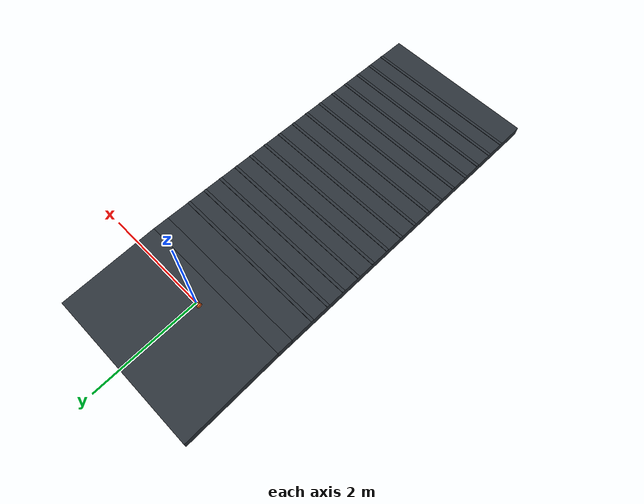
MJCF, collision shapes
<mujoco model="Stage4B rtrain_020_m04p0">
  <compiler angle="radian" meshdir="../../../../assets/upstream_local" />
  <option timestep="0.001" integrator="implicitfast" gravity="0 0 -9.81" />
  <statistic center="0 0 0.05" extent="0.28" />
  <default>
    <default class="visual">
      <geom contype="0" conaffinity="0" group="2" />
    </default>
    <default class="collision">
      <geom group="3" rgba="0.85 0.35 0.12 0.25" solref="0.005 1" solimp="0.9 0.95 0.001" />
    </default>
  </default>
  <asset>
    <texture name="ground_tex" type="2d" builtin="checker" rgb1="0.22 0.25 0.28" rgb2="0.12 0.14 0.16" width="256" height="256" />
    <material name="ground_mat" texture="ground_tex" texrepeat="4 4" reflectance="0.15" />
    <mesh name="main_frame_mesh" file="main_frame.stl" scale="0.001 0.001 0.001" />
    <mesh name="wheel_base_mesh" file="wheel_base.stl" scale="0.001 0.001 0.001" />
    <mesh name="cover_mesh" file="cover.stl" scale="0.001 0.001 0.001" />
    <mesh name="motor_left_mesh" file="motor_left.stl" scale="0.001 0.001 0.001" />
    <mesh name="motor_right_mesh" file="motor_right.stl" scale="0.001 0.001 0.001" />
    <mesh name="mc33926_mesh" file="mc33926.stl" scale="0.001 0.001 0.001" />
    <mesh name="wheel_mesh" file="wheel.stl" scale="0.001 0.001 0.001" />
    <mesh name="adapter_left_mesh" file="adapter_left.stl" scale="0.001 0.001 0.001" />
    <mesh name="adapter_right_mesh" file="adapter_right.stl" scale="0.001 0.001 0.001" />
  </asset>
  <worldbody>
    <light pos="0 -0.5 0.8" dir="0 0.6 -1" diffuse="0.8 0.8 0.8" />
    <geom name="terrain_flat" type="box" pos="0 0.575 -0.1" size="1.5 0.925 0.1" material="ground_mat" friction="0.31548894 0.005 0.0001" condim="3" />
    <geom name="terrain_transition" type="box" pos="0 -0.492658960165 -0.110219876088" euler="0.0698131700798 0 0" size="1.5 0.15 0.1" material="ground_mat" friction="0.31548894 0.005 0.0001" condim="3" />
    <geom name="terrain_constant_grade" type="box" pos="0 -3.63498571848 -0.329952768382" euler="0.0698131700798 0 0" size="1.5 3 0.1" material="ground_mat" friction="0.31548894 0.005 0.0001" condim="3" />
    <geom name="terrain_rough_00" type="box" pos="0 -1.09842622936 -0.0486965458264" euler="0.0698131700798 0 0" size="1.5 0.0279919937434 0.00362965112939" material="ground_mat" friction="0.31548894 0.005 0.0001" condim="3" />
    <geom name="terrain_rough_01" type="box" pos="0 -1.45475384523 -0.073613400012" euler="0.0698131700798 0 0" size="1.5 0.0279919937434 0.00362965112939" material="ground_mat" friction="0.31548894 0.005 0.0001" condim="3" />
    <geom name="terrain_rough_02" type="box" pos="0 -1.81108146111 -0.0985302541975" euler="0.0698131700798 0 0" size="1.5 0.0279919937434 0.00362965112939" material="ground_mat" friction="0.31548894 0.005 0.0001" condim="3" />
    <geom name="terrain_rough_03" type="box" pos="0 -2.16740907698 -0.123447108383" euler="0.0698131700798 0 0" size="1.5 0.0279919937434 0.00362965112939" material="ground_mat" friction="0.31548894 0.005 0.0001" condim="3" />
    <geom name="terrain_rough_04" type="box" pos="0 -2.52373669286 -0.148363962569" euler="0.0698131700798 0 0" size="1.5 0.0279919937434 0.00362965112939" material="ground_mat" friction="0.31548894 0.005 0.0001" condim="3" />
    <geom name="terrain_rough_05" type="box" pos="0 -2.88006430873 -0.173280816754" euler="0.0698131700798 0 0" size="1.5 0.0279919937434 0.00362965112939" material="ground_mat" friction="0.31548894 0.005 0.0001" condim="3" />
    <geom name="terrain_rough_06" type="box" pos="0 -3.23639192461 -0.19819767094" euler="0.0698131700798 0 0" size="1.5 0.0279919937434 0.00362965112939" material="ground_mat" friction="0.31548894 0.005 0.0001" condim="3" />
    <geom name="terrain_rough_07" type="box" pos="0 -3.59271954048 -0.223114525125" euler="0.0698131700798 0 0" size="1.5 0.0279919937434 0.00362965112939" material="ground_mat" friction="0.31548894 0.005 0.0001" condim="3" />
    <geom name="terrain_rough_08" type="box" pos="0 -3.94904715636 -0.248031379311" euler="0.0698131700798 0 0" size="1.5 0.0279919937434 0.00362965112939" material="ground_mat" friction="0.31548894 0.005 0.0001" condim="3" />
    <geom name="terrain_rough_09" type="box" pos="0 -4.30537477223 -0.272948233496" euler="0.0698131700798 0 0" size="1.5 0.0279919937434 0.00362965112939" material="ground_mat" friction="0.31548894 0.005 0.0001" condim="3" />
    <geom name="terrain_rough_10" type="box" pos="0 -4.6617023881 -0.297865087682" euler="0.0698131700798 0 0" size="1.5 0.0279919937434 0.00362965112939" material="ground_mat" friction="0.31548894 0.005 0.0001" condim="3" />
    <geom name="terrain_rough_11" type="box" pos="0 -5.01803000398 -0.322781941867" euler="0.0698131700798 0 0" size="1.5 0.0279919937434 0.00362965112939" material="ground_mat" friction="0.31548894 0.005 0.0001" condim="3" />
    <geom name="terrain_rough_12" type="box" pos="0 -5.37435761985 -0.347698796053" euler="0.0698131700798 0 0" size="1.5 0.0279919937434 0.00362965112939" material="ground_mat" friction="0.31548894 0.005 0.0001" condim="3" />
    <geom name="terrain_rough_13" type="box" pos="0 -5.73068523573 -0.372615650238" euler="0.0698131700798 0 0" size="1.5 0.0279919937434 0.00362965112939" material="ground_mat" friction="0.31548894 0.005 0.0001" condim="3" />
    <geom name="terrain_rough_14" type="box" pos="0 -6.0870128516 -0.397532504424" euler="0.0698131700798 0 0" size="1.5 0.0279919937434 0.00362965112939" material="ground_mat" friction="0.31548894 0.005 0.0001" condim="3" />
    <body name="chassis" pos="0 0 0.043">
      <freejoint name="root" />
      <inertial pos="0.0001592717873 -0.001394466535 0.03368627387" mass="0.8173706489" fullinertia="0.0009508052638 0.001636345835 0.0009938057434 -1.163464906e-07 -4.840496598e-06 3.454944565e-05" />
      <geom name="main_frame_visual" class="visual" type="mesh" mesh="main_frame_mesh" rgba="0.12 0.42 0.72 1" />
      <geom name="wheel_base_visual" class="visual" type="mesh" mesh="wheel_base_mesh" rgba="0.95 0.50 0.10 1" />
      <geom name="cover_visual" class="visual" type="mesh" mesh="cover_mesh" rgba="0.18 0.72 0.32 0.72" />
      <geom name="motor_left_visual" class="visual" type="mesh" mesh="motor_left_mesh" rgba="0.45 0.47 0.50 1" />
      <geom name="motor_right_visual" class="visual" type="mesh" mesh="motor_right_mesh" rgba="0.45 0.47 0.50 1" />
      <geom name="mc33926_visual" class="visual" type="mesh" mesh="mc33926_mesh" rgba="0.08 0.36 0.18 1" />
      <geom name="battery_1_visual" class="visual" type="box" pos="0 -0.012 0.038" size="0.035 0.007 0.025" rgba="0.15 0.25 0.75 1" />
      <geom name="battery_2_visual" class="visual" type="box" pos="0 0.012 0.038" size="0.035 0.007 0.025" rgba="0.15 0.25 0.75 1" />
      <geom name="electronics_lump_visual" class="visual" type="box" pos="0 -0.024 0.067" size="0.035 0.006 0.0425" rgba="0.10 0.42 0.20 0.65" />
      <geom name="wheel_base_collision" class="collision" type="box" pos="0 0.0005 0.0042" size="0.074 0.0201 0.0198" />
      <geom name="lower_chassis_collision" class="collision" type="box" pos="0.001 -0.0015 0.038" size="0.0595 0.0325 0.038" />
      <geom name="upper_chassis_collision" class="collision" type="capsule" fromto="-0.024 -0.0015 0.096 0.026 -0.0015 0.096" size="0.033" />
      <site name="imu_site" type="box" pos="0 0 0.020" quat="1 0 0 0" size="0.004 0.003 0.001" rgba="1 0.15 0.05 1" />
      <body name="left_wheel" pos="-0.0885 0 0">
        <joint name="left_wheel_hinge" type="hinge" axis="1 0 0" damping="0.002" frictionloss="0.002" />
        <inertial pos="0.001407549168 -2.310217342e-08 4.024972882e-05" mass="0.1051" fullinertia="8.559060347e-05 4.760138372e-05 4.763051958e-05 2.677568832e-11 -3.525425309e-08 -1.463149106e-11" />
        <geom name="left_wheel_visual" class="visual" type="mesh" mesh="wheel_mesh" rgba="0.04 0.05 0.06 1" />
        <geom name="left_adapter_visual" class="visual" type="mesh" mesh="adapter_left_mesh" rgba="0.12 0.48 0.82 1" />
        <geom name="left_wheel_collision" class="collision" type="cylinder" size="0.042 0.012" quat="0.7071067812 0 0.7071067812 0" friction="0.31548894 0.005 0.0001" />
      </body>
      <body name="right_wheel" pos="0.0885 0 0">
        <joint name="right_wheel_hinge" type="hinge" axis="1 0 0" damping="0.002" frictionloss="0.002" />
        <inertial pos="-0.001407437868 -2.310217342e-08 -4.019113045e-05" mass="0.1051" fullinertia="8.559060397e-05 4.760141714e-05 4.763055251e-05 -2.601653908e-11 -3.526339188e-08 1.57007511e-11" />
        <geom name="right_wheel_visual" class="visual" type="mesh" mesh="wheel_mesh" rgba="0.04 0.05 0.06 1" />
        <geom name="right_adapter_visual" class="visual" type="mesh" mesh="adapter_right_mesh" rgba="0.12 0.48 0.82 1" />
        <geom name="right_wheel_collision" class="collision" type="cylinder" size="0.042 0.012" quat="0.7071067812 0 0.7071067812 0" friction="0.31548894 0.005 0.0001" />
      </body>
    </body>
  </worldbody>
  <actuator>
    <motor name="left_wheel_torque" joint="left_wheel_hinge" gear="1" ctrllimited="true" ctrlrange="-0.63 0.63" forcelimited="true" forcerange="-0.63 0.63" />
    <motor name="right_wheel_torque" joint="right_wheel_hinge" gear="1" ctrllimited="true" ctrlrange="-0.63 0.63" forcelimited="true" forcerange="-0.63 0.63" />
  </actuator>
  <sensor>
    <accelerometer name="imu_accelerometer" site="imu_site" />
    <gyro name="imu_gyro" site="imu_site" />
    <jointpos name="left_wheel_angle" joint="left_wheel_hinge" />
    <jointpos name="right_wheel_angle" joint="right_wheel_hinge" />
  </sensor>
  <keyframe>
    <key name="upright" qpos="0 0 0.043 1 0 0 0 0 0" />
  </keyframe>
</mujoco>
